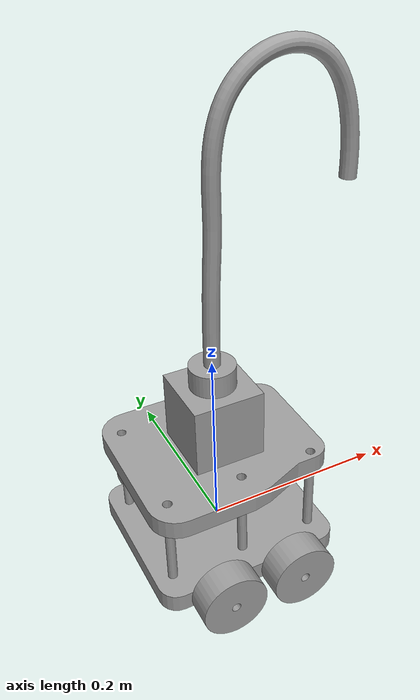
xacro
<?xml version="1.0" ?>

<robot name="diff_drive_robo" xmlns:xacro="http://www.ros.org/wiki/xacro">

  <xacro:arg name="sim_mode" default="true"/>
  <xacro:include filename="$(find frobo)/model/ros2_control_real.xacro"/>

  <!-- Base link -->
  <link name="base_link"/>

  <!-- Base footprint link -->

  <joint name="footprint_joint" type="fixed">
    <parent link="base_link"/>
    <child link="base_footprint"/>
    <origin xyz= "0 0 0" rpy="0 0 0"/>
  </joint>

  <link name="base_footprint">
  </link>

  <!-- Chassis -->
  <joint name="dummy_joint" type="fixed">
    <parent link="base_link"/>
    <child link="chassis"/>
  </joint>

  <link name="chassis">
    <inertial>
      <origin xyz="0 0 -0.01" rpy="0 0 0" />
      <mass value="5.5241076800961295"/>
      <inertia ixx="0.018215" iyy="0.03263" izz="0.014783" ixy="0.0" iyz="0.0" ixz="0.0"/>
    </inertial>
    <visual>
      <origin xyz="0 0 0" rpy="0 0 0" />
      <geometry>
        <mesh filename="file://$(find frobo)/meshes/base_link.STL" />
      </geometry>
      <material name="">
        <color rgba="0.62745 0.62745 0.62745 1" />
      </material>
    </visual>
    <collision>
      <origin xyz="0 0 0" rpy="0 0 0" />
      <geometry>
        <mesh filename="file://$(find frobo)/meshes/base_link.STL" />
      </geometry>
    </collision>
  </link>

    <!-- Back right wheel -->

    <link name="back_right_wheel">
      <inertial>
        <origin xyz="0 0 0" rpy="0 0 0" />
        <mass value="0.8878140839044747"/>
        <inertia ixx="0.000555" iyy="0.000344" izz="0.000344" ixy="0.0" iyz="0.0" ixz="0.0"/>
      </inertial>
      <visual>
        <origin xyz="0 0 0" rpy="0 0 0" />
        <geometry>
          <mesh filename="file://$(find frobo)/meshes/back_right_wheel.STL" />
        </geometry>
        <material name="">
          <color rgba="0.62745 0.62745 0.62745 1" />
        </material>
      </visual>
      <collision>
        <origin xyz="0 0 0" rpy="0 0 0" />
        <geometry>
          <mesh filename="file://$(find frobo)/meshes/back_right_wheel.STL" />
        </geometry>
      </collision>
    </link>

    <joint name="back_right_wheel_joint" type="continuous">
      <origin xyz="-0.038 -0.105 -0.01" rpy="1.5708 0 0" />
      <parent link="base_link" />
      <child link="back_right_wheel" />
      <axis xyz="0 0 -1" />
      <limit lower="-3.142" upper="3.142" effort="0" velocity="0" />
    </joint>

  <!-- Back Left Wheel -->

  <link name="back_left_wheel">
    <inertial>
      <origin xyz="0 0 0" rpy="0 0 0" />
      <mass value="0.8878140839044747"/>
      <inertia ixx="0.000555" iyy="0.000344" izz="0.000344" ixy="0.0" iyz="0.0" ixz="0.0"/>
    </inertial>
    <visual>
      <origin xyz="0 0 0" rpy="0 0 0" />
      <geometry>
        <mesh filename="file://$(find frobo)/meshes/back_left_wheel.STL" />
      </geometry>
      <material name="">
        <color rgba="0.62745 0.62745 0.62745 1" />
      </material>
    </visual>
    <collision>
      <origin xyz="0 0 0" rpy="0 0 0" />
      <geometry>
        <mesh filename="file://$(find frobo)/meshes/back_left_wheel.STL" />
      </geometry>
    </collision>
  </link>

  <joint name="back_left_wheel_joint" type="continuous">
    <origin xyz="-0.038 0.105 -0.01" rpy="1.5708 0 3.1416" />
    <parent link="base_link" />
    <child link="back_left_wheel" />
    <axis xyz="0 0 1" />
    <limit lower="-3.142" upper="3.142" effort="0" velocity="0" />
  </joint>

    <!-- front right wheel -->

    <link name="front_right_wheel">
      <inertial>
        <origin xyz="0 0 0" rpy="0 0 0" />
        <mass value="0.8878140839044747"/>
        <inertia ixx="0.000555" iyy="0.000344" izz="0.000344" ixy="0.0" iyz="0.0" ixz="0.0"/>
      </inertial>
      <visual>
        <origin xyz="0 0 0" rpy="0 0 0" />
        <geometry>
          <mesh filename="file://$(find frobo)/meshes/front_right_wheel.STL" />
        </geometry>
        <material name="">
          <color rgba="0.62745 0.62745 0.62745 1" />
        </material>
      </visual>
      <collision>
        <origin xyz="0 0 0" rpy="0 0 0" />
        <geometry>
          <mesh filename="file://$(find frobo)/meshes/front_right_wheel.STL" />
        </geometry>
      </collision>
    </link>

    <joint name="front_right_wheel_joint" type="continuous">
      <origin xyz="0.042 -0.105 -0.01" rpy="1.5708 0 0" />
      <parent link="base_link" />
      <child link="front_right_wheel" />
      <axis xyz="0 0 -1" />
      <limit lower="-3.142" upper="3.142" effort="0" velocity="0" />
    </joint>

  <!-- front left wheel -->
<link name="front_left_wheel">
    <inertial>
      <origin xyz="0 0 0" rpy="0 0 0" />
      <mass value="0.8878140839044747"/>
      <inertia ixx="0.000555" iyy="0.000344" izz="0.000344" ixy="0.0" iyz="0.0" ixz="0.0"/>
    </inertial>
    <visual>
      <origin xyz="0 0 0" rpy="0 0 0" />
      <geometry>
        <mesh filename="file://$(find frobo)/meshes/front_left_wheel.STL" />
      </geometry>
      <material name="">
        <color rgba="0.62745 0.62745 0.62745 1" />
      </material>
    </visual>
    <collision>
      <origin xyz="0 0 0" rpy="0 0 0" />
      <geometry>
        <mesh filename="file://$(find frobo)/meshes/front_left_wheel.STL" />
      </geometry>
    </collision>
  </link>

  <joint name="front_left_wheel_joint" type="continuous">
    <origin xyz="0.042 0.105 -0.01" rpy="1.5708 0 3.1416" />
    <parent link="base_link" />
    <child link="front_left_wheel" />
    <axis xyz="0 0 1" />
    <limit lower="-3.142" upper="3.142" effort="0" velocity="0" />
  </joint>

  <!-- connecting rods -->

  <link name="connecting_rods">
    <inertial>
      <origin xyz="0 0 0" rpy="0 0 0" />
      <mass value="0.047124" />
      <inertia ixx="3.9564E-05" ixy="0" ixz="0" iyy="3.9564E-05" iyz="0" izz="5.8905E-07" />
    </inertial>
    <visual>
      <origin xyz="0 0 0" rpy="0 0 0" />
      <geometry>
        <mesh filename="file://$(find frobo)/meshes/connecting_rods.STL" />
      </geometry>
      <material name="">
        <color rgba="0.62745 0.62745 0.62745 1" />
      </material>
    </visual>
    <collision>
      <origin xyz="0 0 0" rpy="0 0 0" />
      <geometry>
        <mesh filename="file://$(find frobo)/meshes/connecting_rods.STL" />
      </geometry>
    </collision>
  </link>

  <joint name="cr_low_joint" type="fixed">
    <origin xyz="0 0 0.03" rpy="0 0 0" />
    <parent link="base_link" />
    <child link="connecting_rods" />
    <axis xyz="0 0 0" />
  </joint>

  <!-- upper floor -->
  <link name="upper_floor">
    <inertial>

      <origin xyz="0 0 0.01" rpy="0 0 0" />
      <mass value="0.64039" />

      <inertia ixx="0.0015115" ixy="0" ixz="0" iyy="0.0020181" iyz="0" izz="0.0034869" />
    </inertial>
    <visual>
      <origin xyz="0 0 0" rpy="0 0 0" />
      <geometry>
        <mesh filename="file://$(find frobo)/meshes/upper_floor.STL" />
      </geometry>
      <material name="">
        <color rgba="0.62745 0.62745 0.62745 1" />
      </material>
    </visual>
    <collision>
      <origin xyz="0 0 0" rpy="0 0 0" />
      <geometry>
        <mesh filename="file://$(find frobo)/meshes/upper_floor.STL" />
      </geometry>
    </collision>
  </link>

  <joint name="cr_up_joint" type="fixed">
    <origin xyz="-0.0047489 0 0.05" rpy="0 0 0" />
    <parent link="connecting_rods" />
    <child link="upper_floor" />
    <axis xyz="0 0 0" />
  </joint>

  <!-- lidar -->
  <link name="lidar">
    <inertial>

      <origin xyz="0 0 0" rpy="0 0 0" />
      <mass value="0.39015267359083405"/>
      <inertia ixx="0.0001" iyy="6.9e-05" izz="0.0001" ixy="0.0" iyz="0.0" ixz="0.0"/>
    </inertial>
    <visual>
      <origin xyz="0 0 0" rpy="0 0 0" />
      <geometry>
        <mesh filename="file://$(find frobo)/meshes/lidar.STL" />
      </geometry>
      <material name="">
        <color rgba="0.62745 0.62745 0.62745 1" />
      </material>
    </visual>
    <collision>
      <origin xyz="0 0 0" rpy="0 0 0" />
      <geometry>
        <mesh filename="file://$(find frobo)/meshes/lidar.STL" />
      </geometry>
    </collision>
  </link>

  <joint name="lidar_joint" type="fixed">
    <origin xyz="0.0047489 0 -0.0225" rpy="0 0 0" />
    <parent link="upper_floor" />
    <child link="lidar" />
    <axis xyz="0 0 0" />
  </joint>

  <!-- sampler components -->

  <link name="sampler_box">
    <inertial>

      <origin xyz="0 0 0" rpy="0 0 0" />
      <mass value="0.31171875"/>
      <inertia ixx="0.003105" iyy="0.003105" izz="0.003105" ixy="0.0" iyz="0.0" ixz="0.0"/>
    </inertial>
    <visual>
      <origin xyz="0 0 0" rpy="0 0 0" />
      <geometry>
        <mesh filename="file://$(find frobo)/meshes/sampler_box.STL" />
      </geometry>
      <material name="">
        <color rgba="0.627450980392157 0.627450980392157 0.627450980392157 1" />
      </material>
    </visual>
    <collision>
      <origin xyz="0 0 0" rpy="0 0 0" />
      <geometry>
        <mesh filename="file://$(find frobo)/meshes/sampler_box.STL" />
      </geometry>
    </collision>
  </link>

  <joint name="up_floor_sampler_box" type="fixed">
    <origin xyz="0.0047489 0 0.095" rpy="0 0 0" />
    <parent link="upper_floor" />
    <child link="sampler_box" />
    <axis xyz="0 0 0" />
  </joint>

  <link name="sampler_cylinder">
    <inertial>

       <origin xyz="0 0 0" rpy="0 0 0" />
      <mass value="0.3409206082193185"/>
      <inertia ixx="6.5e-05" iyy="9.8e-05" izz="6.5e-05" ixy="0.0" iyz="0.0" ixz="0.0"/>
    </inertial>
    <visual>
      <origin xyz="0 0 0" rpy="0 0 0" />
      <geometry>
        <mesh filename="file://$(find frobo)/meshes/sampler_cylinder.STL" />
      </geometry>
      <material name="">
        <color rgba="0.62745 0.62745 0.62745 1" />
      </material>
    </visual>
    <collision>
      <origin xyz="0 0 0" rpy="0 0 0" />
      <geometry>
        <mesh filename="file://$(find frobo)/meshes/sampler_cylinder.STL" />
      </geometry>
    </collision>
  </link>

  <joint name="sampler_cyliner_joint" type="fixed">
    <origin xyz="0 0 0.012" rpy="0 0 0" />
    <parent link="sampler_box" />
    <child link="sampler_cylinder" />
    <axis xyz="0 0 0" />
  </joint>

  <link name="sampler_u">
    <inertial>
      <origin xyz="-0.00094401 -0.00043208 0.0044082" rpy="0 0 0" />
      <mass value="0.08684306523577032"/>
      <inertia ixx="0.009358" iyy="0.002907" izz="0.006482" ixy="0.0" iyz="0" ixz="0.0"/>
    </inertial>
    <visual>
      <origin xyz="0 0 0" rpy="0 0 0" />
      <geometry>
        <mesh filename="file://$(find frobo)/meshes/sampler_u.STL" />
      </geometry>
      <material name="">
        <color rgba="0.62745 0.62745 0.62745 1" />
      </material>
    </visual>
    <collision>
      <origin xyz="0 0 0" rpy="0 0 0" />
      <geometry>
        <mesh filename="file://$(find frobo)/meshes/sampler_u.STL" />
      </geometry>
    </collision>
  </link>

  <joint name="sampler_u_Joint" type="fixed">
    <origin xyz="0.052356 0.00043395 0.19583" rpy="0 0 0" />
    <parent link="sampler_cylinder" />
    <child link="sampler_u" />
    <axis xyz="0 0 0" />
  </joint>

</robot>
